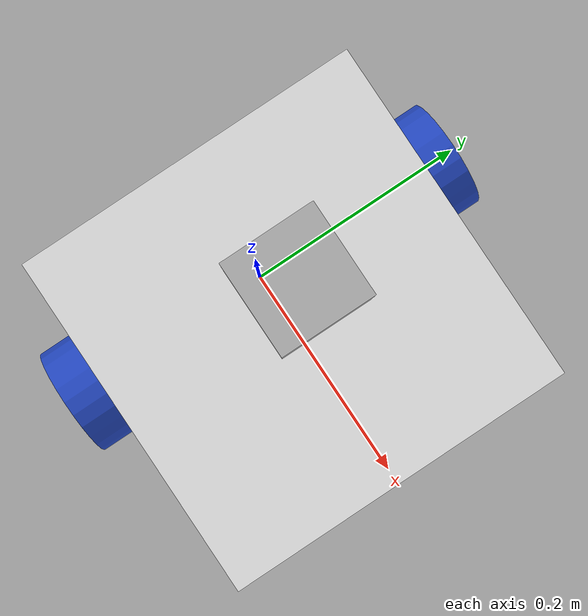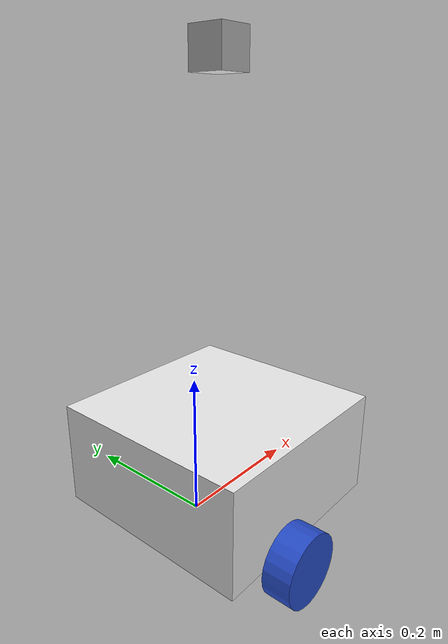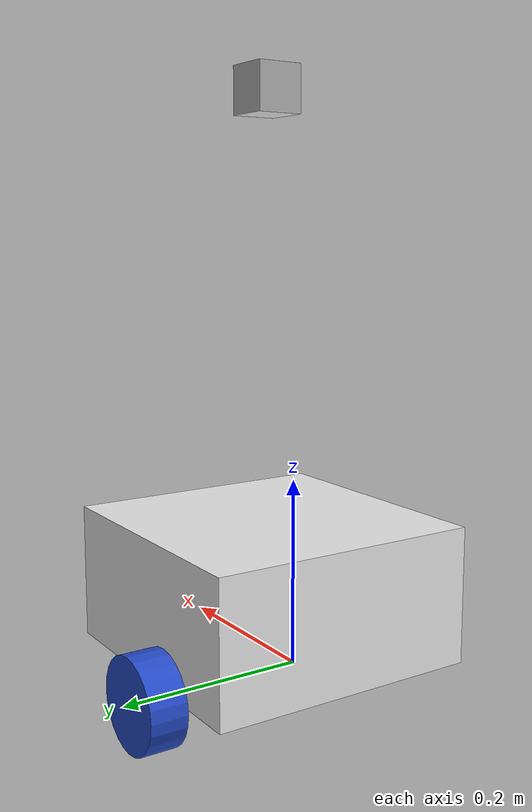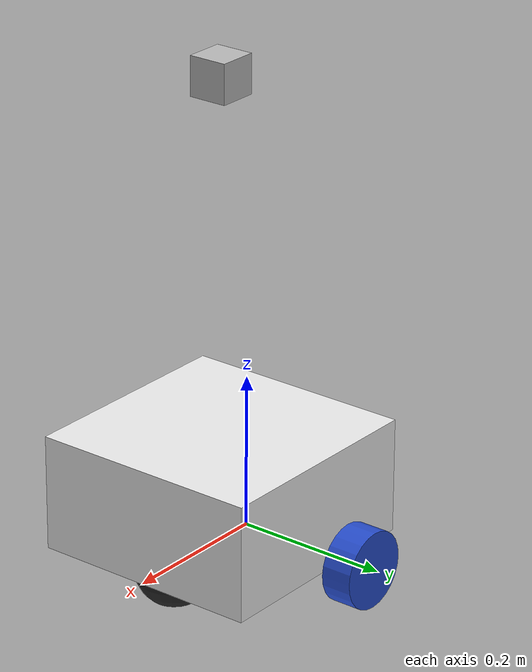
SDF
<?xml version='1.0'?>
<sdf version='1.7'>
  <model name='new_bot.urdf'>
    <link name='base_link'>
      <inertial>
        <pose>0.062857 0 0.096429 0 -0 0</pose>
        <mass>0.7</mass>
        <inertia>
          <ixx>0.0101327</ixx>
          <ixy>0</ixy>
          <ixz>0.000867857</ixz>
          <iyy>0.010827</iyy>
          <iyz>0</iyz>
          <izz>0.00833595</izz>
        </inertia>
      </inertial>
      <sensor name='camera_sensor' type='camera'>
        <camera>
          <horizontal_fov>1.047</horizontal_fov>
          <image>
            <width>640</width>
            <height>480</height>
            <format>R8G8B8</format>
          </image>
          <clip>
            <near>0.1</near>
            <far>100</far>
          </clip>
        </camera>
        <update_rate>30</update_rate>
        <pose>0.05 0 0.3 0 -0 0</pose>
      </sensor>
      <self_collide>0</self_collide>
      <enable_wind>0</enable_wind>
      <kinematic>0</kinematic>
      <pose>0 0 0 0 -0 0</pose>
      <visual name='base_link_fixed_joint_lump__chassis_visual'>
        <pose>0.05 0 0.075 0 -0 0</pose>
        <geometry>
          <box>
            <size>0.3 0.3 0.15</size>
          </box>
        </geometry>
        <material>
          <script>
            <name>Gazebo/White</name>
            <uri>file://media/materials/scripts/gazebo.material</uri>
          </script>
          <shader type='pixel'/>
        </material>
        <transparency>0</transparency>
        <cast_shadows>1</cast_shadows>
      </visual>
      <visual name='base_link_fixed_joint_lump__camera_link_visual_1'>
        <pose>0.05 0 0.6 0 -0 0</pose>
        <geometry>
          <box>
            <size>0.05 0.05 0.05</size>
          </box>
        </geometry>
        <material>
          <shader type='pixel'/>
        </material>
        <transparency>0</transparency>
        <cast_shadows>1</cast_shadows>
      </visual>
      <visual name='base_link_fixed_joint_lump__caster_wheel_visual_2'>
        <pose>0.14 0 0 0 -0 0</pose>
        <geometry>
          <sphere>
            <radius>0.05</radius>
          </sphere>
        </geometry>
        <material>
          <script>
            <name>Gazebo/Black</name>
            <uri>file://media/materials/scripts/gazebo.material</uri>
          </script>
          <shader type='pixel'/>
        </material>
        <transparency>0</transparency>
        <cast_shadows>1</cast_shadows>
      </visual>
      <collision name='base_link_fixed_joint_lump__chassis_collision'>
        <laser_retro>0</laser_retro>
        <max_contacts>10</max_contacts>
        <pose>0.05 0 0.075 0 -0 0</pose>
        <geometry>
          <box>
            <size>0.3 0.3 0.15</size>
          </box>
        </geometry>
        <surface>
          <friction>
            <ode>
              <mu>1</mu>
              <mu2>1</mu2>
              <fdir1>0 0 0</fdir1>
              <slip1>0</slip1>
              <slip2>0</slip2>
            </ode>
            <torsional>
              <coefficient>1</coefficient>
              <patch_radius>0</patch_radius>
              <surface_radius>0</surface_radius>
              <use_patch_radius>1</use_patch_radius>
              <ode>
                <slip>0</slip>
              </ode>
            </torsional>
          </friction>
          <bounce>
            <restitution_coefficient>0</restitution_coefficient>
            <threshold>1e+06</threshold>
          </bounce>
          <contact>
            <collide_without_contact>0</collide_without_contact>
            <collide_without_contact_bitmask>1</collide_without_contact_bitmask>
            <collide_bitmask>1</collide_bitmask>
            <ode>
              <soft_cfm>0</soft_cfm>
              <soft_erp>0.2</soft_erp>
              <kp>1e+13</kp>
              <kd>1</kd>
              <max_vel>0.01</max_vel>
              <min_depth>0</min_depth>
            </ode>
            <bullet>
              <split_impulse>1</split_impulse>
              <split_impulse_penetration_threshold>-0.01</split_impulse_penetration_threshold>
              <soft_cfm>0</soft_cfm>
              <soft_erp>0.2</soft_erp>
              <kp>1e+13</kp>
              <kd>1</kd>
            </bullet>
          </contact>
        </surface>
      </collision>
      <collision name='base_link_fixed_joint_lump__camera_link_collision_1'>
        <laser_retro>0</laser_retro>
        <max_contacts>10</max_contacts>
        <pose>0.05 0 0.3 0 -0 0</pose>
        <geometry>
          <box>
            <size>0.05 0.05 0.05</size>
          </box>
        </geometry>
        <surface>
          <friction>
            <ode>
              <mu>1</mu>
              <mu2>1</mu2>
              <fdir1>0 0 0</fdir1>
              <slip1>0</slip1>
              <slip2>0</slip2>
            </ode>
            <torsional>
              <coefficient>1</coefficient>
              <patch_radius>0</patch_radius>
              <surface_radius>0</surface_radius>
              <use_patch_radius>1</use_patch_radius>
              <ode>
                <slip>0</slip>
              </ode>
            </torsional>
          </friction>
          <bounce>
            <restitution_coefficient>0</restitution_coefficient>
            <threshold>1e+06</threshold>
          </bounce>
          <contact>
            <collide_without_contact>0</collide_without_contact>
            <collide_without_contact_bitmask>1</collide_without_contact_bitmask>
            <collide_bitmask>1</collide_bitmask>
            <ode>
              <soft_cfm>0</soft_cfm>
              <soft_erp>0.2</soft_erp>
              <kp>1e+13</kp>
              <kd>1</kd>
              <max_vel>0.01</max_vel>
              <min_depth>0</min_depth>
            </ode>
            <bullet>
              <split_impulse>1</split_impulse>
              <split_impulse_penetration_threshold>-0.01</split_impulse_penetration_threshold>
              <soft_cfm>0</soft_cfm>
              <soft_erp>0.2</soft_erp>
              <kp>1e+13</kp>
              <kd>1</kd>
            </bullet>
          </contact>
        </surface>
      </collision>
      <collision name='base_link_fixed_joint_lump__caster_wheel_collision_2'>
        <laser_retro>0</laser_retro>
        <max_contacts>10</max_contacts>
        <pose>0.14 0 0 0 -0 0</pose>
        <geometry>
          <sphere>
            <radius>0.05</radius>
          </sphere>
        </geometry>
        <surface>
          <friction>
            <ode>
              <mu>0.001</mu>
              <mu2>0.001</mu2>
              <fdir1>0 0 0</fdir1>
              <slip1>0</slip1>
              <slip2>0</slip2>
            </ode>
            <torsional>
              <coefficient>1</coefficient>
              <patch_radius>0</patch_radius>
              <surface_radius>0</surface_radius>
              <use_patch_radius>1</use_patch_radius>
              <ode>
                <slip>0</slip>
              </ode>
            </torsional>
          </friction>
          <bounce>
            <restitution_coefficient>0</restitution_coefficient>
            <threshold>1e+06</threshold>
          </bounce>
          <contact>
            <collide_without_contact>0</collide_without_contact>
            <collide_without_contact_bitmask>1</collide_without_contact_bitmask>
            <collide_bitmask>1</collide_bitmask>
            <ode>
              <soft_cfm>0</soft_cfm>
              <soft_erp>0.2</soft_erp>
              <kp>1e+13</kp>
              <kd>1</kd>
              <max_vel>0.01</max_vel>
              <min_depth>0</min_depth>
            </ode>
            <bullet>
              <split_impulse>1</split_impulse>
              <split_impulse_penetration_threshold>-0.01</split_impulse_penetration_threshold>
              <soft_cfm>0</soft_cfm>
              <soft_erp>0.2</soft_erp>
              <kp>1e+13</kp>
              <kd>1</kd>
            </bullet>
          </contact>
        </surface>
      </collision>
    </link>
    <link name='left_wheel'>
      <pose>-0 0.175 -0 -1.5708 0 0</pose>
      <inertial>
        <pose>0 0 0 0 -0 0</pose>
        <mass>0.1</mass>
        <inertia>
          <ixx>7.58333e-05</ixx>
          <ixy>0</ixy>
          <ixz>0</ixz>
          <iyy>7.58333e-05</iyy>
          <iyz>0</iyz>
          <izz>0.000125</izz>
        </inertia>
      </inertial>
      <self_collide>0</self_collide>
      <enable_wind>0</enable_wind>
      <kinematic>0</kinematic>
      <visual name='left_wheel_visual'>
        <pose>0 0 0 0 -0 0</pose>
        <geometry>
          <cylinder>
            <length>0.04</length>
            <radius>0.05</radius>
          </cylinder>
        </geometry>
        <material>
          <script>
            <name>Gazebo/Blue</name>
            <uri>file://media/materials/scripts/gazebo.material</uri>
          </script>
          <shader type='pixel'/>
        </material>
        <transparency>0</transparency>
        <cast_shadows>1</cast_shadows>
      </visual>
      <collision name='left_wheel_collision'>
        <laser_retro>0</laser_retro>
        <max_contacts>10</max_contacts>
        <pose>0 0 0 0 -0 0</pose>
        <geometry>
          <cylinder>
            <radius>0.05</radius>
            <length>0.04</length>
          </cylinder>
        </geometry>
        <surface>
          <friction>
            <ode>
              <mu>1</mu>
              <mu2>1</mu2>
              <fdir1>0 0 0</fdir1>
              <slip1>0</slip1>
              <slip2>0</slip2>
            </ode>
            <torsional>
              <coefficient>1</coefficient>
              <patch_radius>0</patch_radius>
              <surface_radius>0</surface_radius>
              <use_patch_radius>1</use_patch_radius>
              <ode>
                <slip>0</slip>
              </ode>
            </torsional>
          </friction>
          <bounce>
            <restitution_coefficient>0</restitution_coefficient>
            <threshold>1e+06</threshold>
          </bounce>
          <contact>
            <collide_without_contact>0</collide_without_contact>
            <collide_without_contact_bitmask>1</collide_without_contact_bitmask>
            <collide_bitmask>1</collide_bitmask>
            <ode>
              <soft_cfm>0</soft_cfm>
              <soft_erp>0.2</soft_erp>
              <kp>1e+13</kp>
              <kd>1</kd>
              <max_vel>0.01</max_vel>
              <min_depth>0</min_depth>
            </ode>
            <bullet>
              <split_impulse>1</split_impulse>
              <split_impulse_penetration_threshold>-0.01</split_impulse_penetration_threshold>
              <soft_cfm>0</soft_cfm>
              <soft_erp>0.2</soft_erp>
              <kp>1e+13</kp>
              <kd>1</kd>
            </bullet>
          </contact>
        </surface>
      </collision>
    </link>
    <link name='right_wheel'>
      <pose>0 -0.175 0 1.5708 -0 0</pose>
      <inertial>
        <pose>0 0 0 0 -0 0</pose>
        <mass>0.1</mass>
        <inertia>
          <ixx>7.58333e-05</ixx>
          <ixy>0</ixy>
          <ixz>0</ixz>
          <iyy>7.58333e-05</iyy>
          <iyz>0</iyz>
          <izz>0.000125</izz>
        </inertia>
      </inertial>
      <self_collide>0</self_collide>
      <enable_wind>0</enable_wind>
      <kinematic>0</kinematic>
      <visual name='right_wheel_visual'>
        <pose>0 0 0 0 -0 0</pose>
        <geometry>
          <cylinder>
            <length>0.04</length>
            <radius>0.05</radius>
          </cylinder>
        </geometry>
        <material>
          <script>
            <name>Gazebo/Blue</name>
            <uri>file://media/materials/scripts/gazebo.material</uri>
          </script>
          <shader type='pixel'/>
        </material>
        <transparency>0</transparency>
        <cast_shadows>1</cast_shadows>
      </visual>
      <collision name='right_wheel_collision'>
        <laser_retro>0</laser_retro>
        <max_contacts>10</max_contacts>
        <pose>0 0 0 0 -0 0</pose>
        <geometry>
          <cylinder>
            <radius>0.05</radius>
            <length>0.04</length>
          </cylinder>
        </geometry>
        <surface>
          <friction>
            <ode>
              <mu>1</mu>
              <mu2>1</mu2>
              <fdir1>0 0 0</fdir1>
              <slip1>0</slip1>
              <slip2>0</slip2>
            </ode>
            <torsional>
              <coefficient>1</coefficient>
              <patch_radius>0</patch_radius>
              <surface_radius>0</surface_radius>
              <use_patch_radius>1</use_patch_radius>
              <ode>
                <slip>0</slip>
              </ode>
            </torsional>
          </friction>
          <bounce>
            <restitution_coefficient>0</restitution_coefficient>
            <threshold>1e+06</threshold>
          </bounce>
          <contact>
            <collide_without_contact>0</collide_without_contact>
            <collide_without_contact_bitmask>1</collide_without_contact_bitmask>
            <collide_bitmask>1</collide_bitmask>
            <ode>
              <soft_cfm>0</soft_cfm>
              <soft_erp>0.2</soft_erp>
              <kp>1e+13</kp>
              <kd>1</kd>
              <max_vel>0.01</max_vel>
              <min_depth>0</min_depth>
            </ode>
            <bullet>
              <split_impulse>1</split_impulse>
              <split_impulse_penetration_threshold>-0.01</split_impulse_penetration_threshold>
              <soft_cfm>0</soft_cfm>
              <soft_erp>0.2</soft_erp>
              <kp>1e+13</kp>
              <kd>1</kd>
            </bullet>
          </contact>
        </surface>
      </collision>
    </link>
    <joint name='left_wheel_joint' type='revolute'>
      <parent>base_link</parent>
      <child>left_wheel</child>
      <pose>0 -0 0 0 -0 0</pose>
      <axis>
        <xyz>0 0 1</xyz>
        <limit>
          <lower>-1e+16</lower>
          <upper>1e+16</upper>
          <effort>-1</effort>
          <velocity>-1</velocity>
        </limit>
        <dynamics>
          <spring_reference>0</spring_reference>
          <spring_stiffness>0</spring_stiffness>
          <damping>0</damping>
          <friction>0</friction>
        </dynamics>
      </axis>
      <physics>
        <ode>
          <limit>
            <cfm>0</cfm>
            <erp>0.2</erp>
          </limit>
          <suspension>
            <cfm>0</cfm>
            <erp>0.2</erp>
          </suspension>
        </ode>
      </physics>
    </joint>
    <joint name='right_wheel_joint' type='revolute'>
      <parent>base_link</parent>
      <child>right_wheel</child>
      <pose>0 0 0 0 -0 0</pose>
      <axis>
        <xyz>0 0 -1</xyz>
        <limit>
          <lower>-1e+16</lower>
          <upper>1e+16</upper>
          <effort>-1</effort>
          <velocity>-1</velocity>
        </limit>
        <dynamics>
          <spring_reference>0</spring_reference>
          <spring_stiffness>0</spring_stiffness>
          <damping>0</damping>
          <friction>0</friction>
        </dynamics>
      </axis>
      <physics>
        <ode>
          <limit>
            <cfm>0</cfm>
            <erp>0.2</erp>
          </limit>
          <suspension>
            <cfm>0</cfm>
            <erp>0.2</erp>
          </suspension>
        </ode>
      </physics>
    </joint>
    <static>0</static>
    <allow_auto_disable>1</allow_auto_disable>
    <plugin name='diff_drive' filename='libgazebo_ros_diff_drive.so'>
      <left_joint>left_wheel_joint</left_joint>
      <right_joint>right_wheel_joint</right_joint>
      <wheel_seperation>0.35</wheel_seperation>
      <wheel_diameter>0.1</wheel_diameter>
      <max_wheel_torque>200</max_wheel_torque>
      <max_wheel_acceleration>10.0</max_wheel_acceleration>
      <odometry_frame>odom</odometry_frame>
      <robot_base_frame>base_link</robot_base_frame>
      <publish_odom>1</publish_odom>
      <publish_odom_tf>1</publish_odom_tf>
      <publish_wheel_tf>1</publish_wheel_tf>
    </plugin>
  </model>
</sdf>
